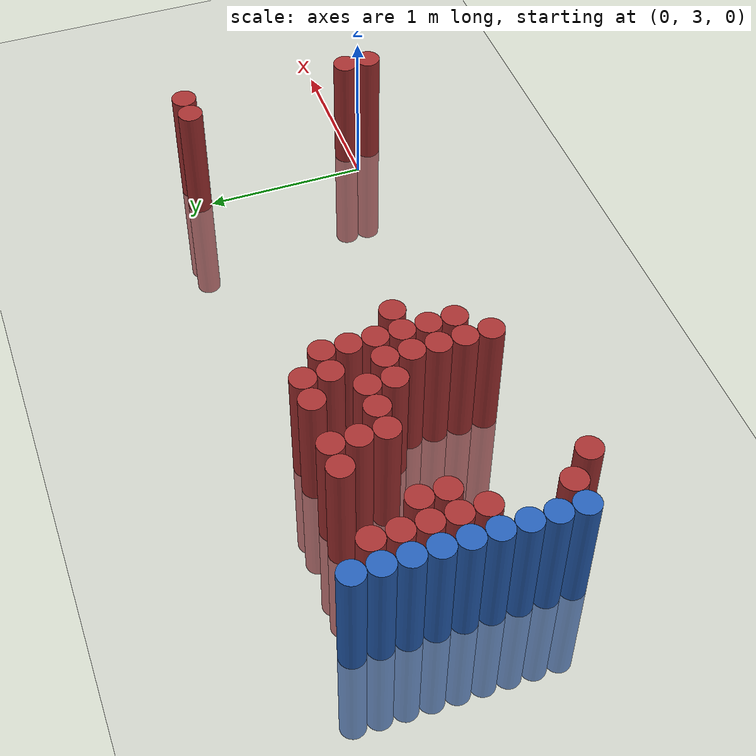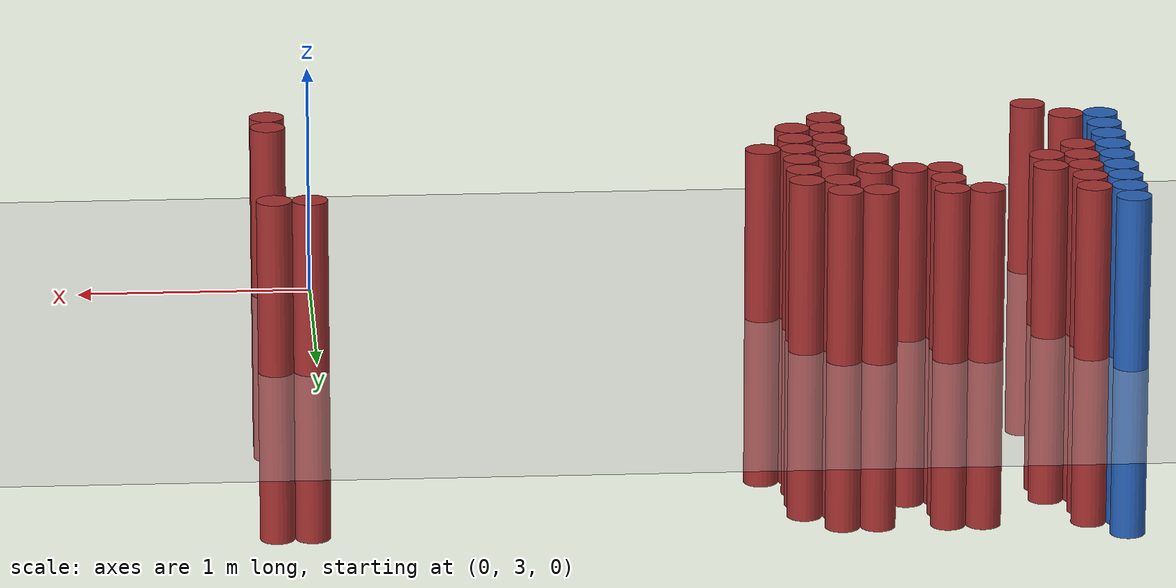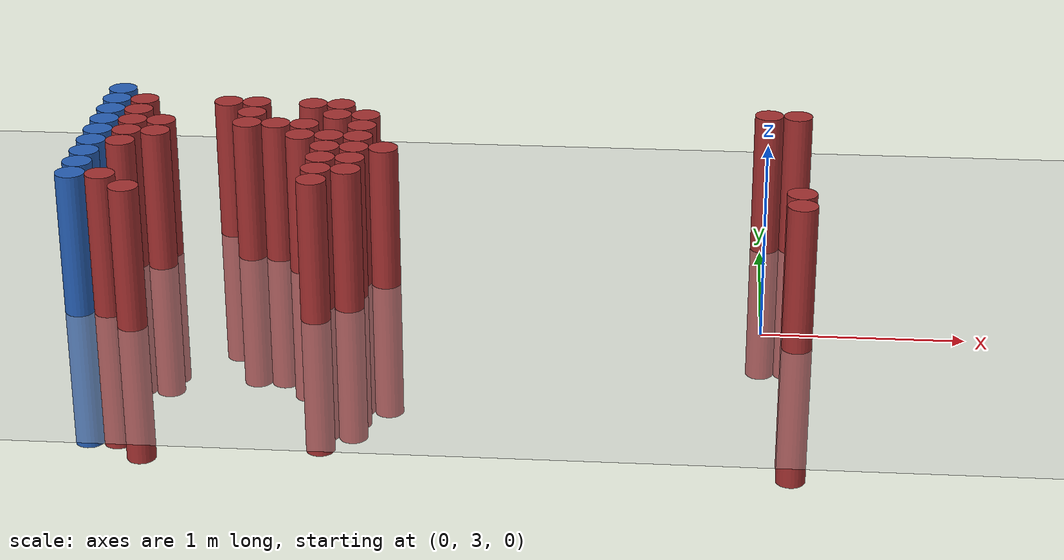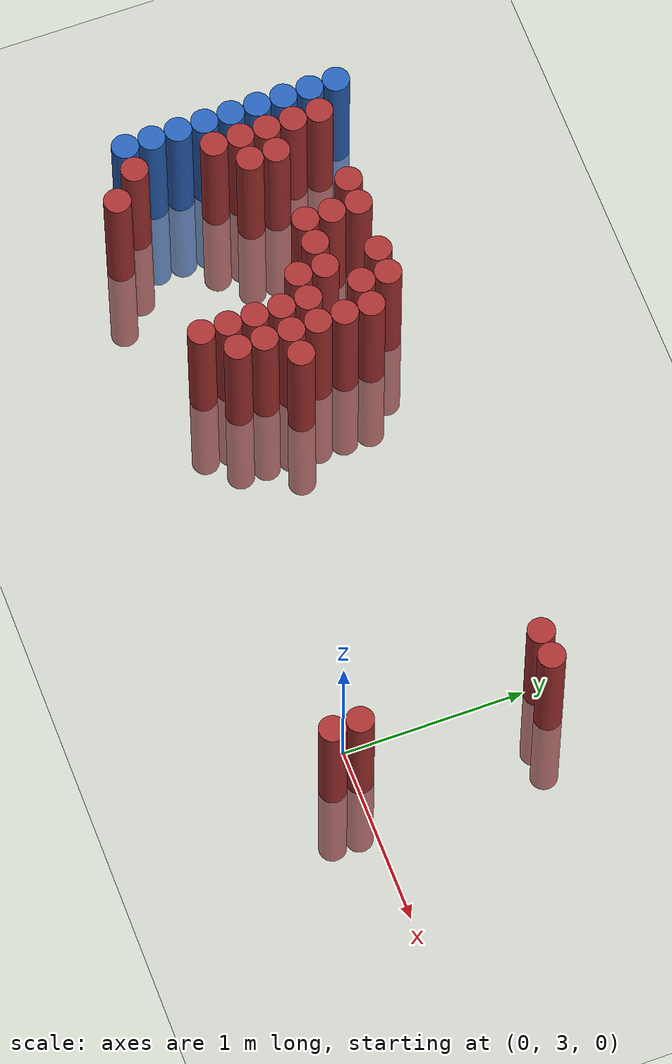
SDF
<sdf version="1.6">
 <world name="default">
  <model name="ground_plane">
   <static>1</static>
   <link name="link">
    <collision name="collision">
     <geometry><plane><normal>0 0 1</normal><size>100 100</size></plane></geometry>
     <surface><friction><ode><mu>100</mu><mu2>50</mu2></ode></friction></surface>
    </collision>
    <visual name="visual">
     <cast_shadows>0</cast_shadows>
     <geometry><plane><normal>0 0 1</normal><size>100 100</size></plane></geometry>
     <material>
      <script><uri>file://media/materials/scripts/gazebo.material</uri><name>Gazebo/Grey</name></script>
     </material>
    </visual>
   </link>
  </model>
  <model name="unit_cylinder_155">
   <static>1</static>
   <pose>-3.425000 3.025000 0.000000 0.000000 0.000000 0.000000</pose>
   <link name="link">
    <inertial>
     <mass>1</mass>
     <inertia><ixx>0.145833</ixx><ixy>0</ixy><ixz>0</ixz><iyy>0.145833</iyy><iyz>0</iyz><izz>0.125</izz></inertia>
    </inertial>
    <collision name="collision">
     <geometry><cylinder><radius>0.075000</radius><length>1.5</length></cylinder></geometry>
    </collision>
    <visual name="visual">
     <geometry><cylinder><radius>0.075000</radius><length>1.5</length></cylinder></geometry>
     <material>
      <ambient>0.152000 0.379000 0.720000 1</ambient>
      <diffuse>0.152000 0.379000 0.720000 1</diffuse>
     </material>
     <material>
      <script><name>Gazebo/Grey</name><uri>file://media/materials/scripts/gazebo.material</uri></script>
     </material>
    </visual>
   </link>
  </model>
  <model name="unit_cylinder_157">
   <static>1</static>
   <pose>-3.425000 3.175000 0.000000 0.000000 0.000000 0.000000</pose>
   <link name="link">
    <inertial>
     <mass>1</mass>
     <inertia><ixx>0.145833</ixx><ixy>0</ixy><ixz>0</ixz><iyy>0.145833</iyy><iyz>0</iyz><izz>0.125</izz></inertia>
    </inertial>
    <collision name="collision">
     <geometry><cylinder><radius>0.075000</radius><length>1.5</length></cylinder></geometry>
    </collision>
    <visual name="visual">
     <geometry><cylinder><radius>0.075000</radius><length>1.5</length></cylinder></geometry>
     <material>
      <ambient>0.152000 0.379000 0.720000 1</ambient>
      <diffuse>0.152000 0.379000 0.720000 1</diffuse>
     </material>
     <material>
      <script><name>Gazebo/Grey</name><uri>file://media/materials/scripts/gazebo.material</uri></script>
     </material>
    </visual>
   </link>
  </model>
  <model name="unit_cylinder_159">
   <static>1</static>
   <pose>-3.425000 3.325000 0.000000 0.000000 0.000000 0.000000</pose>
   <link name="link">
    <inertial>
     <mass>1</mass>
     <inertia><ixx>0.145833</ixx><ixy>0</ixy><ixz>0</ixz><iyy>0.145833</iyy><iyz>0</iyz><izz>0.125</izz></inertia>
    </inertial>
    <collision name="collision">
     <geometry><cylinder><radius>0.075000</radius><length>1.5</length></cylinder></geometry>
    </collision>
    <visual name="visual">
     <geometry><cylinder><radius>0.075000</radius><length>1.5</length></cylinder></geometry>
     <material>
      <ambient>0.152000 0.379000 0.720000 1</ambient>
      <diffuse>0.152000 0.379000 0.720000 1</diffuse>
     </material>
     <material>
      <script><name>Gazebo/Grey</name><uri>file://media/materials/scripts/gazebo.material</uri></script>
     </material>
    </visual>
   </link>
  </model>
  <model name="unit_cylinder_161">
   <static>1</static>
   <pose>-3.425000 3.475000 0.000000 0.000000 0.000000 0.000000</pose>
   <link name="link">
    <inertial>
     <mass>1</mass>
     <inertia><ixx>0.145833</ixx><ixy>0</ixy><ixz>0</ixz><iyy>0.145833</iyy><iyz>0</iyz><izz>0.125</izz></inertia>
    </inertial>
    <collision name="collision">
     <geometry><cylinder><radius>0.075000</radius><length>1.5</length></cylinder></geometry>
    </collision>
    <visual name="visual">
     <geometry><cylinder><radius>0.075000</radius><length>1.5</length></cylinder></geometry>
     <material>
      <ambient>0.152000 0.379000 0.720000 1</ambient>
      <diffuse>0.152000 0.379000 0.720000 1</diffuse>
     </material>
     <material>
      <script><name>Gazebo/Grey</name><uri>file://media/materials/scripts/gazebo.material</uri></script>
     </material>
    </visual>
   </link>
  </model>
  <model name="unit_cylinder_163">
   <static>1</static>
   <pose>-3.425000 3.625000 0.000000 0.000000 0.000000 0.000000</pose>
   <link name="link">
    <inertial>
     <mass>1</mass>
     <inertia><ixx>0.145833</ixx><ixy>0</ixy><ixz>0</ixz><iyy>0.145833</iyy><iyz>0</iyz><izz>0.125</izz></inertia>
    </inertial>
    <collision name="collision">
     <geometry><cylinder><radius>0.075000</radius><length>1.5</length></cylinder></geometry>
    </collision>
    <visual name="visual">
     <geometry><cylinder><radius>0.075000</radius><length>1.5</length></cylinder></geometry>
     <material>
      <ambient>0.152000 0.379000 0.720000 1</ambient>
      <diffuse>0.152000 0.379000 0.720000 1</diffuse>
     </material>
     <material>
      <script><name>Gazebo/Grey</name><uri>file://media/materials/scripts/gazebo.material</uri></script>
     </material>
    </visual>
   </link>
  </model>
  <model name="unit_cylinder_165">
   <static>1</static>
   <pose>-3.425000 3.775000 0.000000 0.000000 0.000000 0.000000</pose>
   <link name="link">
    <inertial>
     <mass>1</mass>
     <inertia><ixx>0.145833</ixx><ixy>0</ixy><ixz>0</ixz><iyy>0.145833</iyy><iyz>0</iyz><izz>0.125</izz></inertia>
    </inertial>
    <collision name="collision">
     <geometry><cylinder><radius>0.075000</radius><length>1.5</length></cylinder></geometry>
    </collision>
    <visual name="visual">
     <geometry><cylinder><radius>0.075000</radius><length>1.5</length></cylinder></geometry>
     <material>
      <ambient>0.152000 0.379000 0.720000 1</ambient>
      <diffuse>0.152000 0.379000 0.720000 1</diffuse>
     </material>
     <material>
      <script><name>Gazebo/Grey</name><uri>file://media/materials/scripts/gazebo.material</uri></script>
     </material>
    </visual>
   </link>
  </model>
  <model name="unit_cylinder_167">
   <static>1</static>
   <pose>-3.425000 3.925000 0.000000 0.000000 0.000000 0.000000</pose>
   <link name="link">
    <inertial>
     <mass>1</mass>
     <inertia><ixx>0.145833</ixx><ixy>0</ixy><ixz>0</ixz><iyy>0.145833</iyy><iyz>0</iyz><izz>0.125</izz></inertia>
    </inertial>
    <collision name="collision">
     <geometry><cylinder><radius>0.075000</radius><length>1.5</length></cylinder></geometry>
    </collision>
    <visual name="visual">
     <geometry><cylinder><radius>0.075000</radius><length>1.5</length></cylinder></geometry>
     <material>
      <ambient>0.152000 0.379000 0.720000 1</ambient>
      <diffuse>0.152000 0.379000 0.720000 1</diffuse>
     </material>
     <material>
      <script><name>Gazebo/Grey</name><uri>file://media/materials/scripts/gazebo.material</uri></script>
     </material>
    </visual>
   </link>
  </model>
  <model name="unit_cylinder_169">
   <static>1</static>
   <pose>-3.425000 4.075000 0.000000 0.000000 0.000000 0.000000</pose>
   <link name="link">
    <inertial>
     <mass>1</mass>
     <inertia><ixx>0.145833</ixx><ixy>0</ixy><ixz>0</ixz><iyy>0.145833</iyy><iyz>0</iyz><izz>0.125</izz></inertia>
    </inertial>
    <collision name="collision">
     <geometry><cylinder><radius>0.075000</radius><length>1.5</length></cylinder></geometry>
    </collision>
    <visual name="visual">
     <geometry><cylinder><radius>0.075000</radius><length>1.5</length></cylinder></geometry>
     <material>
      <ambient>0.152000 0.379000 0.720000 1</ambient>
      <diffuse>0.152000 0.379000 0.720000 1</diffuse>
     </material>
     <material>
      <script><name>Gazebo/Grey</name><uri>file://media/materials/scripts/gazebo.material</uri></script>
     </material>
    </visual>
   </link>
  </model>
  <model name="unit_cylinder_171">
   <static>1</static>
   <pose>-3.425000 4.225000 0.000000 0.000000 0.000000 0.000000</pose>
   <link name="link">
    <inertial>
     <mass>1</mass>
     <inertia><ixx>0.145833</ixx><ixy>0</ixy><ixz>0</ixz><iyy>0.145833</iyy><iyz>0</iyz><izz>0.125</izz></inertia>
    </inertial>
    <collision name="collision">
     <geometry><cylinder><radius>0.075000</radius><length>1.5</length></cylinder></geometry>
    </collision>
    <visual name="visual">
     <geometry><cylinder><radius>0.075000</radius><length>1.5</length></cylinder></geometry>
     <material>
      <ambient>0.152000 0.379000 0.720000 1</ambient>
      <diffuse>0.152000 0.379000 0.720000 1</diffuse>
     </material>
     <material>
      <script><name>Gazebo/Grey</name><uri>file://media/materials/scripts/gazebo.material</uri></script>
     </material>
    </visual>
   </link>
  </model>
  <model name="unit_cylinder_241">
   <static>1</static>
   <pose>-3.425000 3.025000 0.000000 0.000000 0.000000 0.000000</pose>
   <link name="link">
    <inertial>
     <mass>1</mass>
     <inertia><ixx>0.145833</ixx><ixy>0</ixy><ixz>0</ixz><iyy>0.145833</iyy><iyz>0</iyz><izz>0.125</izz></inertia>
    </inertial>
    <collision name="collision">
     <geometry><cylinder><radius>0.075000</radius><length>1.5</length></cylinder></geometry>
    </collision>
    <visual name="visual">
     <geometry><cylinder><radius>0.075000</radius><length>1.5</length></cylinder></geometry>
     <material>
      <ambient>0.152000 0.379000 0.720000 1</ambient>
      <diffuse>0.152000 0.379000 0.720000 1</diffuse>
     </material>
     <material>
      <script><name>Gazebo/Grey</name><uri>file://media/materials/scripts/gazebo.material</uri></script>
     </material>
    </visual>
   </link>
  </model>
  <model name="unit_cylinder_242">
   <static>1</static>
   <pose>-3.425000 3.175000 0.000000 0.000000 0.000000 0.000000</pose>
   <link name="link">
    <inertial>
     <mass>1</mass>
     <inertia><ixx>0.145833</ixx><ixy>0</ixy><ixz>0</ixz><iyy>0.145833</iyy><iyz>0</iyz><izz>0.125</izz></inertia>
    </inertial>
    <collision name="collision">
     <geometry><cylinder><radius>0.075000</radius><length>1.5</length></cylinder></geometry>
    </collision>
    <visual name="visual">
     <geometry><cylinder><radius>0.075000</radius><length>1.5</length></cylinder></geometry>
     <material>
      <ambient>0.152000 0.379000 0.720000 1</ambient>
      <diffuse>0.152000 0.379000 0.720000 1</diffuse>
     </material>
     <material>
      <script><name>Gazebo/Grey</name><uri>file://media/materials/scripts/gazebo.material</uri></script>
     </material>
    </visual>
   </link>
  </model>
  <model name="unit_cylinder_243">
   <static>1</static>
   <pose>-3.425000 3.325000 0.000000 0.000000 0.000000 0.000000</pose>
   <link name="link">
    <inertial>
     <mass>1</mass>
     <inertia><ixx>0.145833</ixx><ixy>0</ixy><ixz>0</ixz><iyy>0.145833</iyy><iyz>0</iyz><izz>0.125</izz></inertia>
    </inertial>
    <collision name="collision">
     <geometry><cylinder><radius>0.075000</radius><length>1.5</length></cylinder></geometry>
    </collision>
    <visual name="visual">
     <geometry><cylinder><radius>0.075000</radius><length>1.5</length></cylinder></geometry>
     <material>
      <ambient>0.152000 0.379000 0.720000 1</ambient>
      <diffuse>0.152000 0.379000 0.720000 1</diffuse>
     </material>
     <material>
      <script><name>Gazebo/Grey</name><uri>file://media/materials/scripts/gazebo.material</uri></script>
     </material>
    </visual>
   </link>
  </model>
  <model name="unit_cylinder_244">
   <static>1</static>
   <pose>-3.425000 3.475000 0.000000 0.000000 0.000000 0.000000</pose>
   <link name="link">
    <inertial>
     <mass>1</mass>
     <inertia><ixx>0.145833</ixx><ixy>0</ixy><ixz>0</ixz><iyy>0.145833</iyy><iyz>0</iyz><izz>0.125</izz></inertia>
    </inertial>
    <collision name="collision">
     <geometry><cylinder><radius>0.075000</radius><length>1.5</length></cylinder></geometry>
    </collision>
    <visual name="visual">
     <geometry><cylinder><radius>0.075000</radius><length>1.5</length></cylinder></geometry>
     <material>
      <ambient>0.152000 0.379000 0.720000 1</ambient>
      <diffuse>0.152000 0.379000 0.720000 1</diffuse>
     </material>
     <material>
      <script><name>Gazebo/Grey</name><uri>file://media/materials/scripts/gazebo.material</uri></script>
     </material>
    </visual>
   </link>
  </model>
  <model name="unit_cylinder_245">
   <static>1</static>
   <pose>-3.425000 3.625000 0.000000 0.000000 0.000000 0.000000</pose>
   <link name="link">
    <inertial>
     <mass>1</mass>
     <inertia><ixx>0.145833</ixx><ixy>0</ixy><ixz>0</ixz><iyy>0.145833</iyy><iyz>0</iyz><izz>0.125</izz></inertia>
    </inertial>
    <collision name="collision">
     <geometry><cylinder><radius>0.075000</radius><length>1.5</length></cylinder></geometry>
    </collision>
    <visual name="visual">
     <geometry><cylinder><radius>0.075000</radius><length>1.5</length></cylinder></geometry>
     <material>
      <ambient>0.152000 0.379000 0.720000 1</ambient>
      <diffuse>0.152000 0.379000 0.720000 1</diffuse>
     </material>
     <material>
      <script><name>Gazebo/Grey</name><uri>file://media/materials/scripts/gazebo.material</uri></script>
     </material>
    </visual>
   </link>
  </model>
  <model name="unit_cylinder_246">
   <static>1</static>
   <pose>-3.425000 3.775000 0.000000 0.000000 0.000000 0.000000</pose>
   <link name="link">
    <inertial>
     <mass>1</mass>
     <inertia><ixx>0.145833</ixx><ixy>0</ixy><ixz>0</ixz><iyy>0.145833</iyy><iyz>0</iyz><izz>0.125</izz></inertia>
    </inertial>
    <collision name="collision">
     <geometry><cylinder><radius>0.075000</radius><length>1.5</length></cylinder></geometry>
    </collision>
    <visual name="visual">
     <geometry><cylinder><radius>0.075000</radius><length>1.5</length></cylinder></geometry>
     <material>
      <ambient>0.152000 0.379000 0.720000 1</ambient>
      <diffuse>0.152000 0.379000 0.720000 1</diffuse>
     </material>
     <material>
      <script><name>Gazebo/Grey</name><uri>file://media/materials/scripts/gazebo.material</uri></script>
     </material>
    </visual>
   </link>
  </model>
  <model name="unit_cylinder_247">
   <static>1</static>
   <pose>-3.425000 3.925000 0.000000 0.000000 0.000000 0.000000</pose>
   <link name="link">
    <inertial>
     <mass>1</mass>
     <inertia><ixx>0.145833</ixx><ixy>0</ixy><ixz>0</ixz><iyy>0.145833</iyy><iyz>0</iyz><izz>0.125</izz></inertia>
    </inertial>
    <collision name="collision">
     <geometry><cylinder><radius>0.075000</radius><length>1.5</length></cylinder></geometry>
    </collision>
    <visual name="visual">
     <geometry><cylinder><radius>0.075000</radius><length>1.5</length></cylinder></geometry>
     <material>
      <ambient>0.152000 0.379000 0.720000 1</ambient>
      <diffuse>0.152000 0.379000 0.720000 1</diffuse>
     </material>
     <material>
      <script><name>Gazebo/Grey</name><uri>file://media/materials/scripts/gazebo.material</uri></script>
     </material>
    </visual>
   </link>
  </model>
  <model name="unit_cylinder_248">
   <static>1</static>
   <pose>-3.425000 4.075000 0.000000 0.000000 0.000000 0.000000</pose>
   <link name="link">
    <inertial>
     <mass>1</mass>
     <inertia><ixx>0.145833</ixx><ixy>0</ixy><ixz>0</ixz><iyy>0.145833</iyy><iyz>0</iyz><izz>0.125</izz></inertia>
    </inertial>
    <collision name="collision">
     <geometry><cylinder><radius>0.075000</radius><length>1.5</length></cylinder></geometry>
    </collision>
    <visual name="visual">
     <geometry><cylinder><radius>0.075000</radius><length>1.5</length></cylinder></geometry>
     <material>
      <ambient>0.152000 0.379000 0.720000 1</ambient>
      <diffuse>0.152000 0.379000 0.720000 1</diffuse>
     </material>
     <material>
      <script><name>Gazebo/Grey</name><uri>file://media/materials/scripts/gazebo.material</uri></script>
     </material>
    </visual>
   </link>
  </model>
  <model name="unit_cylinder_271">
   <static>1</static>
   <pose>-3.275000 3.025000 0.000000 0.000000 0.000000 0.000000</pose>
   <link name="link">
    <inertial>
     <mass>1</mass>
     <inertia><ixx>0.145833</ixx><ixy>0</ixy><ixz>0</ixz><iyy>0.145833</iyy><iyz>0</iyz><izz>0.125</izz></inertia>
    </inertial>
    <collision name="collision">
     <geometry><cylinder><radius>0.075000</radius><length>1.5</length></cylinder></geometry>
    </collision>
    <visual name="visual">
     <geometry><cylinder><radius>0.075000</radius><length>1.5</length></cylinder></geometry>
     <material>
      <ambient>0.648000 0.192000 0.192000 1</ambient>
      <diffuse>0.648000 0.192000 0.192000 1</diffuse>
     </material>
     <material>
      <script><name>Gazebo/Grey</name><uri>file://media/materials/scripts/gazebo.material</uri></script>
     </material>
    </visual>
   </link>
  </model>
  <model name="unit_cylinder_272">
   <static>1</static>
   <pose>-3.275000 3.475000 0.000000 0.000000 0.000000 0.000000</pose>
   <link name="link">
    <inertial>
     <mass>1</mass>
     <inertia><ixx>0.145833</ixx><ixy>0</ixy><ixz>0</ixz><iyy>0.145833</iyy><iyz>0</iyz><izz>0.125</izz></inertia>
    </inertial>
    <collision name="collision">
     <geometry><cylinder><radius>0.075000</radius><length>1.5</length></cylinder></geometry>
    </collision>
    <visual name="visual">
     <geometry><cylinder><radius>0.075000</radius><length>1.5</length></cylinder></geometry>
     <material>
      <ambient>0.648000 0.192000 0.192000 1</ambient>
      <diffuse>0.648000 0.192000 0.192000 1</diffuse>
     </material>
     <material>
      <script><name>Gazebo/Grey</name><uri>file://media/materials/scripts/gazebo.material</uri></script>
     </material>
    </visual>
   </link>
  </model>
  <model name="unit_cylinder_273">
   <static>1</static>
   <pose>-3.275000 3.625000 0.000000 0.000000 0.000000 0.000000</pose>
   <link name="link">
    <inertial>
     <mass>1</mass>
     <inertia><ixx>0.145833</ixx><ixy>0</ixy><ixz>0</ixz><iyy>0.145833</iyy><iyz>0</iyz><izz>0.125</izz></inertia>
    </inertial>
    <collision name="collision">
     <geometry><cylinder><radius>0.075000</radius><length>1.5</length></cylinder></geometry>
    </collision>
    <visual name="visual">
     <geometry><cylinder><radius>0.075000</radius><length>1.5</length></cylinder></geometry>
     <material>
      <ambient>0.648000 0.192000 0.192000 1</ambient>
      <diffuse>0.648000 0.192000 0.192000 1</diffuse>
     </material>
     <material>
      <script><name>Gazebo/Grey</name><uri>file://media/materials/scripts/gazebo.material</uri></script>
     </material>
    </visual>
   </link>
  </model>
  <model name="unit_cylinder_274">
   <static>1</static>
   <pose>-3.275000 3.775000 0.000000 0.000000 0.000000 0.000000</pose>
   <link name="link">
    <inertial>
     <mass>1</mass>
     <inertia><ixx>0.145833</ixx><ixy>0</ixy><ixz>0</ixz><iyy>0.145833</iyy><iyz>0</iyz><izz>0.125</izz></inertia>
    </inertial>
    <collision name="collision">
     <geometry><cylinder><radius>0.075000</radius><length>1.5</length></cylinder></geometry>
    </collision>
    <visual name="visual">
     <geometry><cylinder><radius>0.075000</radius><length>1.5</length></cylinder></geometry>
     <material>
      <ambient>0.648000 0.192000 0.192000 1</ambient>
      <diffuse>0.648000 0.192000 0.192000 1</diffuse>
     </material>
     <material>
      <script><name>Gazebo/Grey</name><uri>file://media/materials/scripts/gazebo.material</uri></script>
     </material>
    </visual>
   </link>
  </model>
  <model name="unit_cylinder_275">
   <static>1</static>
   <pose>-3.275000 3.925000 0.000000 0.000000 0.000000 0.000000</pose>
   <link name="link">
    <inertial>
     <mass>1</mass>
     <inertia><ixx>0.145833</ixx><ixy>0</ixy><ixz>0</ixz><iyy>0.145833</iyy><iyz>0</iyz><izz>0.125</izz></inertia>
    </inertial>
    <collision name="collision">
     <geometry><cylinder><radius>0.075000</radius><length>1.5</length></cylinder></geometry>
    </collision>
    <visual name="visual">
     <geometry><cylinder><radius>0.075000</radius><length>1.5</length></cylinder></geometry>
     <material>
      <ambient>0.648000 0.192000 0.192000 1</ambient>
      <diffuse>0.648000 0.192000 0.192000 1</diffuse>
     </material>
     <material>
      <script><name>Gazebo/Grey</name><uri>file://media/materials/scripts/gazebo.material</uri></script>
     </material>
    </visual>
   </link>
  </model>
  <model name="unit_cylinder_276">
   <static>1</static>
   <pose>-3.275000 4.075000 0.000000 0.000000 0.000000 0.000000</pose>
   <link name="link">
    <inertial>
     <mass>1</mass>
     <inertia><ixx>0.145833</ixx><ixy>0</ixy><ixz>0</ixz><iyy>0.145833</iyy><iyz>0</iyz><izz>0.125</izz></inertia>
    </inertial>
    <collision name="collision">
     <geometry><cylinder><radius>0.075000</radius><length>1.5</length></cylinder></geometry>
    </collision>
    <visual name="visual">
     <geometry><cylinder><radius>0.075000</radius><length>1.5</length></cylinder></geometry>
     <material>
      <ambient>0.648000 0.192000 0.192000 1</ambient>
      <diffuse>0.648000 0.192000 0.192000 1</diffuse>
     </material>
     <material>
      <script><name>Gazebo/Grey</name><uri>file://media/materials/scripts/gazebo.material</uri></script>
     </material>
    </visual>
   </link>
  </model>
  <model name="unit_cylinder_287">
   <static>1</static>
   <pose>-3.125000 2.875000 0.000000 0.000000 0.000000 0.000000</pose>
   <link name="link">
    <inertial>
     <mass>1</mass>
     <inertia><ixx>0.145833</ixx><ixy>0</ixy><ixz>0</ixz><iyy>0.145833</iyy><iyz>0</iyz><izz>0.125</izz></inertia>
    </inertial>
    <collision name="collision">
     <geometry><cylinder><radius>0.075000</radius><length>1.5</length></cylinder></geometry>
    </collision>
    <visual name="visual">
     <geometry><cylinder><radius>0.075000</radius><length>1.5</length></cylinder></geometry>
     <material>
      <ambient>0.648000 0.192000 0.192000 1</ambient>
      <diffuse>0.648000 0.192000 0.192000 1</diffuse>
     </material>
     <material>
      <script><name>Gazebo/Grey</name><uri>file://media/materials/scripts/gazebo.material</uri></script>
     </material>
    </visual>
   </link>
  </model>
  <model name="unit_cylinder_288">
   <static>1</static>
   <pose>-3.125000 3.625000 0.000000 0.000000 0.000000 0.000000</pose>
   <link name="link">
    <inertial>
     <mass>1</mass>
     <inertia><ixx>0.145833</ixx><ixy>0</ixy><ixz>0</ixz><iyy>0.145833</iyy><iyz>0</iyz><izz>0.125</izz></inertia>
    </inertial>
    <collision name="collision">
     <geometry><cylinder><radius>0.075000</radius><length>1.5</length></cylinder></geometry>
    </collision>
    <visual name="visual">
     <geometry><cylinder><radius>0.075000</radius><length>1.5</length></cylinder></geometry>
     <material>
      <ambient>0.648000 0.192000 0.192000 1</ambient>
      <diffuse>0.648000 0.192000 0.192000 1</diffuse>
     </material>
     <material>
      <script><name>Gazebo/Grey</name><uri>file://media/materials/scripts/gazebo.material</uri></script>
     </material>
    </visual>
   </link>
  </model>
  <model name="unit_cylinder_289">
   <static>1</static>
   <pose>-3.125000 3.775000 0.000000 0.000000 0.000000 0.000000</pose>
   <link name="link">
    <inertial>
     <mass>1</mass>
     <inertia><ixx>0.145833</ixx><ixy>0</ixy><ixz>0</ixz><iyy>0.145833</iyy><iyz>0</iyz><izz>0.125</izz></inertia>
    </inertial>
    <collision name="collision">
     <geometry><cylinder><radius>0.075000</radius><length>1.5</length></cylinder></geometry>
    </collision>
    <visual name="visual">
     <geometry><cylinder><radius>0.075000</radius><length>1.5</length></cylinder></geometry>
     <material>
      <ambient>0.648000 0.192000 0.192000 1</ambient>
      <diffuse>0.648000 0.192000 0.192000 1</diffuse>
     </material>
     <material>
      <script><name>Gazebo/Grey</name><uri>file://media/materials/scripts/gazebo.material</uri></script>
     </material>
    </visual>
   </link>
  </model>
  <model name="unit_cylinder_301">
   <static>1</static>
   <pose>-2.825000 4.075000 0.000000 0.000000 0.000000 0.000000</pose>
   <link name="link">
    <inertial>
     <mass>1</mass>
     <inertia><ixx>0.145833</ixx><ixy>0</ixy><ixz>0</ixz><iyy>0.145833</iyy><iyz>0</iyz><izz>0.125</izz></inertia>
    </inertial>
    <collision name="collision">
     <geometry><cylinder><radius>0.075000</radius><length>1.5</length></cylinder></geometry>
    </collision>
    <visual name="visual">
     <geometry><cylinder><radius>0.075000</radius><length>1.5</length></cylinder></geometry>
     <material>
      <ambient>0.648000 0.192000 0.192000 1</ambient>
      <diffuse>0.648000 0.192000 0.192000 1</diffuse>
     </material>
     <material>
      <script><name>Gazebo/Grey</name><uri>file://media/materials/scripts/gazebo.material</uri></script>
     </material>
    </visual>
   </link>
  </model>
  <model name="unit_cylinder_304">
   <static>1</static>
   <pose>-2.675000 3.775000 0.000000 0.000000 0.000000 0.000000</pose>
   <link name="link">
    <inertial>
     <mass>1</mass>
     <inertia><ixx>0.145833</ixx><ixy>0</ixy><ixz>0</ixz><iyy>0.145833</iyy><iyz>0</iyz><izz>0.125</izz></inertia>
    </inertial>
    <collision name="collision">
     <geometry><cylinder><radius>0.075000</radius><length>1.5</length></cylinder></geometry>
    </collision>
    <visual name="visual">
     <geometry><cylinder><radius>0.075000</radius><length>1.5</length></cylinder></geometry>
     <material>
      <ambient>0.648000 0.192000 0.192000 1</ambient>
      <diffuse>0.648000 0.192000 0.192000 1</diffuse>
     </material>
     <material>
      <script><name>Gazebo/Grey</name><uri>file://media/materials/scripts/gazebo.material</uri></script>
     </material>
    </visual>
   </link>
  </model>
  <model name="unit_cylinder_305">
   <static>1</static>
   <pose>-2.675000 3.925000 0.000000 0.000000 0.000000 0.000000</pose>
   <link name="link">
    <inertial>
     <mass>1</mass>
     <inertia><ixx>0.145833</ixx><ixy>0</ixy><ixz>0</ixz><iyy>0.145833</iyy><iyz>0</iyz><izz>0.125</izz></inertia>
    </inertial>
    <collision name="collision">
     <geometry><cylinder><radius>0.075000</radius><length>1.5</length></cylinder></geometry>
    </collision>
    <visual name="visual">
     <geometry><cylinder><radius>0.075000</radius><length>1.5</length></cylinder></geometry>
     <material>
      <ambient>0.648000 0.192000 0.192000 1</ambient>
      <diffuse>0.648000 0.192000 0.192000 1</diffuse>
     </material>
     <material>
      <script><name>Gazebo/Grey</name><uri>file://media/materials/scripts/gazebo.material</uri></script>
     </material>
    </visual>
   </link>
  </model>
  <model name="unit_cylinder_306">
   <static>1</static>
   <pose>-2.675000 4.075000 0.000000 0.000000 0.000000 0.000000</pose>
   <link name="link">
    <inertial>
     <mass>1</mass>
     <inertia><ixx>0.145833</ixx><ixy>0</ixy><ixz>0</ixz><iyy>0.145833</iyy><iyz>0</iyz><izz>0.125</izz></inertia>
    </inertial>
    <collision name="collision">
     <geometry><cylinder><radius>0.075000</radius><length>1.5</length></cylinder></geometry>
    </collision>
    <visual name="visual">
     <geometry><cylinder><radius>0.075000</radius><length>1.5</length></cylinder></geometry>
     <material>
      <ambient>0.648000 0.192000 0.192000 1</ambient>
      <diffuse>0.648000 0.192000 0.192000 1</diffuse>
     </material>
     <material>
      <script><name>Gazebo/Grey</name><uri>file://media/materials/scripts/gazebo.material</uri></script>
     </material>
    </visual>
   </link>
  </model>
  <model name="unit_cylinder_311">
   <static>1</static>
   <pose>-2.525000 3.775000 0.000000 0.000000 0.000000 0.000000</pose>
   <link name="link">
    <inertial>
     <mass>1</mass>
     <inertia><ixx>0.145833</ixx><ixy>0</ixy><ixz>0</ixz><iyy>0.145833</iyy><iyz>0</iyz><izz>0.125</izz></inertia>
    </inertial>
    <collision name="collision">
     <geometry><cylinder><radius>0.075000</radius><length>1.5</length></cylinder></geometry>
    </collision>
    <visual name="visual">
     <geometry><cylinder><radius>0.075000</radius><length>1.5</length></cylinder></geometry>
     <material>
      <ambient>0.648000 0.192000 0.192000 1</ambient>
      <diffuse>0.648000 0.192000 0.192000 1</diffuse>
     </material>
     <material>
      <script><name>Gazebo/Grey</name><uri>file://media/materials/scripts/gazebo.material</uri></script>
     </material>
    </visual>
   </link>
  </model>
  <model name="unit_cylinder_322">
   <static>1</static>
   <pose>-2.375000 3.625000 0.000000 0.000000 0.000000 0.000000</pose>
   <link name="link">
    <inertial>
     <mass>1</mass>
     <inertia><ixx>0.145833</ixx><ixy>0</ixy><ixz>0</ixz><iyy>0.145833</iyy><iyz>0</iyz><izz>0.125</izz></inertia>
    </inertial>
    <collision name="collision">
     <geometry><cylinder><radius>0.075000</radius><length>1.5</length></cylinder></geometry>
    </collision>
    <visual name="visual">
     <geometry><cylinder><radius>0.075000</radius><length>1.5</length></cylinder></geometry>
     <material>
      <ambient>0.648000 0.192000 0.192000 1</ambient>
      <diffuse>0.648000 0.192000 0.192000 1</diffuse>
     </material>
     <material>
      <script><name>Gazebo/Grey</name><uri>file://media/materials/scripts/gazebo.material</uri></script>
     </material>
    </visual>
   </link>
  </model>
  <model name="unit_cylinder_323">
   <static>1</static>
   <pose>-2.375000 3.775000 0.000000 0.000000 0.000000 0.000000</pose>
   <link name="link">
    <inertial>
     <mass>1</mass>
     <inertia><ixx>0.145833</ixx><ixy>0</ixy><ixz>0</ixz><iyy>0.145833</iyy><iyz>0</iyz><izz>0.125</izz></inertia>
    </inertial>
    <collision name="collision">
     <geometry><cylinder><radius>0.075000</radius><length>1.5</length></cylinder></geometry>
    </collision>
    <visual name="visual">
     <geometry><cylinder><radius>0.075000</radius><length>1.5</length></cylinder></geometry>
     <material>
      <ambient>0.648000 0.192000 0.192000 1</ambient>
      <diffuse>0.648000 0.192000 0.192000 1</diffuse>
     </material>
     <material>
      <script><name>Gazebo/Grey</name><uri>file://media/materials/scripts/gazebo.material</uri></script>
     </material>
    </visual>
   </link>
  </model>
  <model name="unit_cylinder_324">
   <static>1</static>
   <pose>-2.375000 4.075000 0.000000 0.000000 0.000000 0.000000</pose>
   <link name="link">
    <inertial>
     <mass>1</mass>
     <inertia><ixx>0.145833</ixx><ixy>0</ixy><ixz>0</ixz><iyy>0.145833</iyy><iyz>0</iyz><izz>0.125</izz></inertia>
    </inertial>
    <collision name="collision">
     <geometry><cylinder><radius>0.075000</radius><length>1.5</length></cylinder></geometry>
    </collision>
    <visual name="visual">
     <geometry><cylinder><radius>0.075000</radius><length>1.5</length></cylinder></geometry>
     <material>
      <ambient>0.648000 0.192000 0.192000 1</ambient>
      <diffuse>0.648000 0.192000 0.192000 1</diffuse>
     </material>
     <material>
      <script><name>Gazebo/Grey</name><uri>file://media/materials/scripts/gazebo.material</uri></script>
     </material>
    </visual>
   </link>
  </model>
  <model name="unit_cylinder_332">
   <static>1</static>
   <pose>-2.225000 3.025000 0.000000 0.000000 0.000000 0.000000</pose>
   <link name="link">
    <inertial>
     <mass>1</mass>
     <inertia><ixx>0.145833</ixx><ixy>0</ixy><ixz>0</ixz><iyy>0.145833</iyy><iyz>0</iyz><izz>0.125</izz></inertia>
    </inertial>
    <collision name="collision">
     <geometry><cylinder><radius>0.075000</radius><length>1.5</length></cylinder></geometry>
    </collision>
    <visual name="visual">
     <geometry><cylinder><radius>0.075000</radius><length>1.5</length></cylinder></geometry>
     <material>
      <ambient>0.648000 0.192000 0.192000 1</ambient>
      <diffuse>0.648000 0.192000 0.192000 1</diffuse>
     </material>
     <material>
      <script><name>Gazebo/Grey</name><uri>file://media/materials/scripts/gazebo.material</uri></script>
     </material>
    </visual>
   </link>
  </model>
  <model name="unit_cylinder_333">
   <static>1</static>
   <pose>-2.225000 3.175000 0.000000 0.000000 0.000000 0.000000</pose>
   <link name="link">
    <inertial>
     <mass>1</mass>
     <inertia><ixx>0.145833</ixx><ixy>0</ixy><ixz>0</ixz><iyy>0.145833</iyy><iyz>0</iyz><izz>0.125</izz></inertia>
    </inertial>
    <collision name="collision">
     <geometry><cylinder><radius>0.075000</radius><length>1.5</length></cylinder></geometry>
    </collision>
    <visual name="visual">
     <geometry><cylinder><radius>0.075000</radius><length>1.5</length></cylinder></geometry>
     <material>
      <ambient>0.648000 0.192000 0.192000 1</ambient>
      <diffuse>0.648000 0.192000 0.192000 1</diffuse>
     </material>
     <material>
      <script><name>Gazebo/Grey</name><uri>file://media/materials/scripts/gazebo.material</uri></script>
     </material>
    </visual>
   </link>
  </model>
  <model name="unit_cylinder_334">
   <static>1</static>
   <pose>-2.225000 3.325000 0.000000 0.000000 0.000000 0.000000</pose>
   <link name="link">
    <inertial>
     <mass>1</mass>
     <inertia><ixx>0.145833</ixx><ixy>0</ixy><ixz>0</ixz><iyy>0.145833</iyy><iyz>0</iyz><izz>0.125</izz></inertia>
    </inertial>
    <collision name="collision">
     <geometry><cylinder><radius>0.075000</radius><length>1.5</length></cylinder></geometry>
    </collision>
    <visual name="visual">
     <geometry><cylinder><radius>0.075000</radius><length>1.5</length></cylinder></geometry>
     <material>
      <ambient>0.648000 0.192000 0.192000 1</ambient>
      <diffuse>0.648000 0.192000 0.192000 1</diffuse>
     </material>
     <material>
      <script><name>Gazebo/Grey</name><uri>file://media/materials/scripts/gazebo.material</uri></script>
     </material>
    </visual>
   </link>
  </model>
  <model name="unit_cylinder_335">
   <static>1</static>
   <pose>-2.225000 3.475000 0.000000 0.000000 0.000000 0.000000</pose>
   <link name="link">
    <inertial>
     <mass>1</mass>
     <inertia><ixx>0.145833</ixx><ixy>0</ixy><ixz>0</ixz><iyy>0.145833</iyy><iyz>0</iyz><izz>0.125</izz></inertia>
    </inertial>
    <collision name="collision">
     <geometry><cylinder><radius>0.075000</radius><length>1.5</length></cylinder></geometry>
    </collision>
    <visual name="visual">
     <geometry><cylinder><radius>0.075000</radius><length>1.5</length></cylinder></geometry>
     <material>
      <ambient>0.648000 0.192000 0.192000 1</ambient>
      <diffuse>0.648000 0.192000 0.192000 1</diffuse>
     </material>
     <material>
      <script><name>Gazebo/Grey</name><uri>file://media/materials/scripts/gazebo.material</uri></script>
     </material>
    </visual>
   </link>
  </model>
  <model name="unit_cylinder_336">
   <static>1</static>
   <pose>-2.225000 3.625000 0.000000 0.000000 0.000000 0.000000</pose>
   <link name="link">
    <inertial>
     <mass>1</mass>
     <inertia><ixx>0.145833</ixx><ixy>0</ixy><ixz>0</ixz><iyy>0.145833</iyy><iyz>0</iyz><izz>0.125</izz></inertia>
    </inertial>
    <collision name="collision">
     <geometry><cylinder><radius>0.075000</radius><length>1.5</length></cylinder></geometry>
    </collision>
    <visual name="visual">
     <geometry><cylinder><radius>0.075000</radius><length>1.5</length></cylinder></geometry>
     <material>
      <ambient>0.648000 0.192000 0.192000 1</ambient>
      <diffuse>0.648000 0.192000 0.192000 1</diffuse>
     </material>
     <material>
      <script><name>Gazebo/Grey</name><uri>file://media/materials/scripts/gazebo.material</uri></script>
     </material>
    </visual>
   </link>
  </model>
  <model name="unit_cylinder_337">
   <static>1</static>
   <pose>-2.225000 3.925000 0.000000 0.000000 0.000000 0.000000</pose>
   <link name="link">
    <inertial>
     <mass>1</mass>
     <inertia><ixx>0.145833</ixx><ixy>0</ixy><ixz>0</ixz><iyy>0.145833</iyy><iyz>0</iyz><izz>0.125</izz></inertia>
    </inertial>
    <collision name="collision">
     <geometry><cylinder><radius>0.075000</radius><length>1.5</length></cylinder></geometry>
    </collision>
    <visual name="visual">
     <geometry><cylinder><radius>0.075000</radius><length>1.5</length></cylinder></geometry>
     <material>
      <ambient>0.648000 0.192000 0.192000 1</ambient>
      <diffuse>0.648000 0.192000 0.192000 1</diffuse>
     </material>
     <material>
      <script><name>Gazebo/Grey</name><uri>file://media/materials/scripts/gazebo.material</uri></script>
     </material>
    </visual>
   </link>
  </model>
  <model name="unit_cylinder_338">
   <static>1</static>
   <pose>-2.225000 4.075000 0.000000 0.000000 0.000000 0.000000</pose>
   <link name="link">
    <inertial>
     <mass>1</mass>
     <inertia><ixx>0.145833</ixx><ixy>0</ixy><ixz>0</ixz><iyy>0.145833</iyy><iyz>0</iyz><izz>0.125</izz></inertia>
    </inertial>
    <collision name="collision">
     <geometry><cylinder><radius>0.075000</radius><length>1.5</length></cylinder></geometry>
    </collision>
    <visual name="visual">
     <geometry><cylinder><radius>0.075000</radius><length>1.5</length></cylinder></geometry>
     <material>
      <ambient>0.648000 0.192000 0.192000 1</ambient>
      <diffuse>0.648000 0.192000 0.192000 1</diffuse>
     </material>
     <material>
      <script><name>Gazebo/Grey</name><uri>file://media/materials/scripts/gazebo.material</uri></script>
     </material>
    </visual>
   </link>
  </model>
  <model name="unit_cylinder_342">
   <static>1</static>
   <pose>-2.075000 3.175000 0.000000 0.000000 0.000000 0.000000</pose>
   <link name="link">
    <inertial>
     <mass>1</mass>
     <inertia><ixx>0.145833</ixx><ixy>0</ixy><ixz>0</ixz><iyy>0.145833</iyy><iyz>0</iyz><izz>0.125</izz></inertia>
    </inertial>
    <collision name="collision">
     <geometry><cylinder><radius>0.075000</radius><length>1.5</length></cylinder></geometry>
    </collision>
    <visual name="visual">
     <geometry><cylinder><radius>0.075000</radius><length>1.5</length></cylinder></geometry>
     <material>
      <ambient>0.648000 0.192000 0.192000 1</ambient>
      <diffuse>0.648000 0.192000 0.192000 1</diffuse>
     </material>
     <material>
      <script><name>Gazebo/Grey</name><uri>file://media/materials/scripts/gazebo.material</uri></script>
     </material>
    </visual>
   </link>
  </model>
  <model name="unit_cylinder_343">
   <static>1</static>
   <pose>-2.075000 3.325000 0.000000 0.000000 0.000000 0.000000</pose>
   <link name="link">
    <inertial>
     <mass>1</mass>
     <inertia><ixx>0.145833</ixx><ixy>0</ixy><ixz>0</ixz><iyy>0.145833</iyy><iyz>0</iyz><izz>0.125</izz></inertia>
    </inertial>
    <collision name="collision">
     <geometry><cylinder><radius>0.075000</radius><length>1.5</length></cylinder></geometry>
    </collision>
    <visual name="visual">
     <geometry><cylinder><radius>0.075000</radius><length>1.5</length></cylinder></geometry>
     <material>
      <ambient>0.648000 0.192000 0.192000 1</ambient>
      <diffuse>0.648000 0.192000 0.192000 1</diffuse>
     </material>
     <material>
      <script><name>Gazebo/Grey</name><uri>file://media/materials/scripts/gazebo.material</uri></script>
     </material>
    </visual>
   </link>
  </model>
  <model name="unit_cylinder_344">
   <static>1</static>
   <pose>-2.075000 3.475000 0.000000 0.000000 0.000000 0.000000</pose>
   <link name="link">
    <inertial>
     <mass>1</mass>
     <inertia><ixx>0.145833</ixx><ixy>0</ixy><ixz>0</ixz><iyy>0.145833</iyy><iyz>0</iyz><izz>0.125</izz></inertia>
    </inertial>
    <collision name="collision">
     <geometry><cylinder><radius>0.075000</radius><length>1.5</length></cylinder></geometry>
    </collision>
    <visual name="visual">
     <geometry><cylinder><radius>0.075000</radius><length>1.5</length></cylinder></geometry>
     <material>
      <ambient>0.648000 0.192000 0.192000 1</ambient>
      <diffuse>0.648000 0.192000 0.192000 1</diffuse>
     </material>
     <material>
      <script><name>Gazebo/Grey</name><uri>file://media/materials/scripts/gazebo.material</uri></script>
     </material>
    </visual>
   </link>
  </model>
  <model name="unit_cylinder_345">
   <static>1</static>
   <pose>-2.075000 3.625000 0.000000 0.000000 0.000000 0.000000</pose>
   <link name="link">
    <inertial>
     <mass>1</mass>
     <inertia><ixx>0.145833</ixx><ixy>0</ixy><ixz>0</ixz><iyy>0.145833</iyy><iyz>0</iyz><izz>0.125</izz></inertia>
    </inertial>
    <collision name="collision">
     <geometry><cylinder><radius>0.075000</radius><length>1.5</length></cylinder></geometry>
    </collision>
    <visual name="visual">
     <geometry><cylinder><radius>0.075000</radius><length>1.5</length></cylinder></geometry>
     <material>
      <ambient>0.648000 0.192000 0.192000 1</ambient>
      <diffuse>0.648000 0.192000 0.192000 1</diffuse>
     </material>
     <material>
      <script><name>Gazebo/Grey</name><uri>file://media/materials/scripts/gazebo.material</uri></script>
     </material>
    </visual>
   </link>
  </model>
  <model name="unit_cylinder_346">
   <static>1</static>
   <pose>-2.075000 3.775000 0.000000 0.000000 0.000000 0.000000</pose>
   <link name="link">
    <inertial>
     <mass>1</mass>
     <inertia><ixx>0.145833</ixx><ixy>0</ixy><ixz>0</ixz><iyy>0.145833</iyy><iyz>0</iyz><izz>0.125</izz></inertia>
    </inertial>
    <collision name="collision">
     <geometry><cylinder><radius>0.075000</radius><length>1.5</length></cylinder></geometry>
    </collision>
    <visual name="visual">
     <geometry><cylinder><radius>0.075000</radius><length>1.5</length></cylinder></geometry>
     <material>
      <ambient>0.648000 0.192000 0.192000 1</ambient>
      <diffuse>0.648000 0.192000 0.192000 1</diffuse>
     </material>
     <material>
      <script><name>Gazebo/Grey</name><uri>file://media/materials/scripts/gazebo.material</uri></script>
     </material>
    </visual>
   </link>
  </model>
  <model name="unit_cylinder_347">
   <static>1</static>
   <pose>-2.075000 3.925000 0.000000 0.000000 0.000000 0.000000</pose>
   <link name="link">
    <inertial>
     <mass>1</mass>
     <inertia><ixx>0.145833</ixx><ixy>0</ixy><ixz>0</ixz><iyy>0.145833</iyy><iyz>0</iyz><izz>0.125</izz></inertia>
    </inertial>
    <collision name="collision">
     <geometry><cylinder><radius>0.075000</radius><length>1.5</length></cylinder></geometry>
    </collision>
    <visual name="visual">
     <geometry><cylinder><radius>0.075000</radius><length>1.5</length></cylinder></geometry>
     <material>
      <ambient>0.648000 0.192000 0.192000 1</ambient>
      <diffuse>0.648000 0.192000 0.192000 1</diffuse>
     </material>
     <material>
      <script><name>Gazebo/Grey</name><uri>file://media/materials/scripts/gazebo.material</uri></script>
     </material>
    </visual>
   </link>
  </model>
  <model name="unit_cylinder_349">
   <static>1</static>
   <pose>-1.925000 3.475000 0.000000 0.000000 0.000000 0.000000</pose>
   <link name="link">
    <inertial>
     <mass>1</mass>
     <inertia><ixx>0.145833</ixx><ixy>0</ixy><ixz>0</ixz><iyy>0.145833</iyy><iyz>0</iyz><izz>0.125</izz></inertia>
    </inertial>
    <collision name="collision">
     <geometry><cylinder><radius>0.075000</radius><length>1.5</length></cylinder></geometry>
    </collision>
    <visual name="visual">
     <geometry><cylinder><radius>0.075000</radius><length>1.5</length></cylinder></geometry>
     <material>
      <ambient>0.648000 0.192000 0.192000 1</ambient>
      <diffuse>0.648000 0.192000 0.192000 1</diffuse>
     </material>
     <material>
      <script><name>Gazebo/Grey</name><uri>file://media/materials/scripts/gazebo.material</uri></script>
     </material>
    </visual>
   </link>
  </model>
  <model name="unit_cylinder_367">
   <static>1</static>
   <pose>0.025000 4.075000 0.000000 0.000000 0.000000 0.000000</pose>
   <link name="link">
    <inertial>
     <mass>1</mass>
     <inertia><ixx>0.145833</ixx><ixy>0</ixy><ixz>0</ixz><iyy>0.145833</iyy><iyz>0</iyz><izz>0.125</izz></inertia>
    </inertial>
    <collision name="collision">
     <geometry><cylinder><radius>0.075000</radius><length>1.5</length></cylinder></geometry>
    </collision>
    <visual name="visual">
     <geometry><cylinder><radius>0.075000</radius><length>1.5</length></cylinder></geometry>
     <material>
      <ambient>0.648000 0.192000 0.192000 1</ambient>
      <diffuse>0.648000 0.192000 0.192000 1</diffuse>
     </material>
     <material>
      <script><name>Gazebo/Grey</name><uri>file://media/materials/scripts/gazebo.material</uri></script>
     </material>
    </visual>
   </link>
  </model>
  <model name="unit_cylinder_373">
   <static>1</static>
   <pose>0.175000 2.875000 0.000000 0.000000 0.000000 0.000000</pose>
   <link name="link">
    <inertial>
     <mass>1</mass>
     <inertia><ixx>0.145833</ixx><ixy>0</ixy><ixz>0</ixz><iyy>0.145833</iyy><iyz>0</iyz><izz>0.125</izz></inertia>
    </inertial>
    <collision name="collision">
     <geometry><cylinder><radius>0.075000</radius><length>1.5</length></cylinder></geometry>
    </collision>
    <visual name="visual">
     <geometry><cylinder><radius>0.075000</radius><length>1.5</length></cylinder></geometry>
     <material>
      <ambient>0.648000 0.192000 0.192000 1</ambient>
      <diffuse>0.648000 0.192000 0.192000 1</diffuse>
     </material>
     <material>
      <script><name>Gazebo/Grey</name><uri>file://media/materials/scripts/gazebo.material</uri></script>
     </material>
    </visual>
   </link>
  </model>
  <model name="unit_cylinder_374">
   <static>1</static>
   <pose>0.175000 3.025000 0.000000 0.000000 0.000000 0.000000</pose>
   <link name="link">
    <inertial>
     <mass>1</mass>
     <inertia><ixx>0.145833</ixx><ixy>0</ixy><ixz>0</ixz><iyy>0.145833</iyy><iyz>0</iyz><izz>0.125</izz></inertia>
    </inertial>
    <collision name="collision">
     <geometry><cylinder><radius>0.075000</radius><length>1.5</length></cylinder></geometry>
    </collision>
    <visual name="visual">
     <geometry><cylinder><radius>0.075000</radius><length>1.5</length></cylinder></geometry>
     <material>
      <ambient>0.648000 0.192000 0.192000 1</ambient>
      <diffuse>0.648000 0.192000 0.192000 1</diffuse>
     </material>
     <material>
      <script><name>Gazebo/Grey</name><uri>file://media/materials/scripts/gazebo.material</uri></script>
     </material>
    </visual>
   </link>
  </model>
  <model name="unit_cylinder_375">
   <static>1</static>
   <pose>0.175000 4.075000 0.000000 0.000000 0.000000 0.000000</pose>
   <link name="link">
    <inertial>
     <mass>1</mass>
     <inertia><ixx>0.145833</ixx><ixy>0</ixy><ixz>0</ixz><iyy>0.145833</iyy><iyz>0</iyz><izz>0.125</izz></inertia>
    </inertial>
    <collision name="collision">
     <geometry><cylinder><radius>0.075000</radius><length>1.5</length></cylinder></geometry>
    </collision>
    <visual name="visual">
     <geometry><cylinder><radius>0.075000</radius><length>1.5</length></cylinder></geometry>
     <material>
      <ambient>0.648000 0.192000 0.192000 1</ambient>
      <diffuse>0.648000 0.192000 0.192000 1</diffuse>
     </material>
     <material>
      <script><name>Gazebo/Grey</name><uri>file://media/materials/scripts/gazebo.material</uri></script>
     </material>
    </visual>
   </link>
  </model>
 </world>
</sdf>
